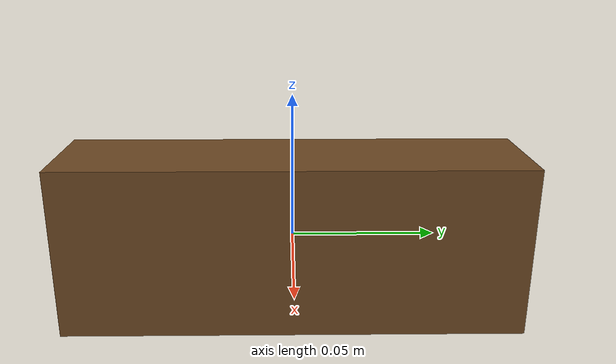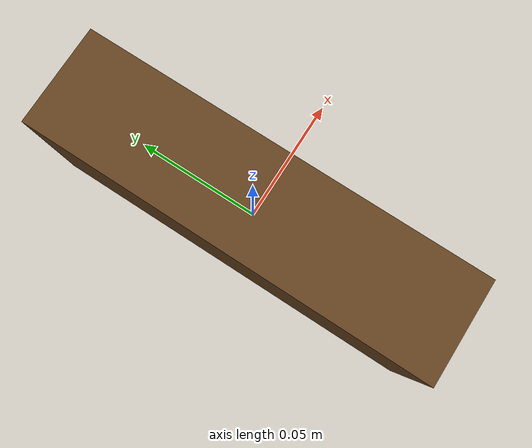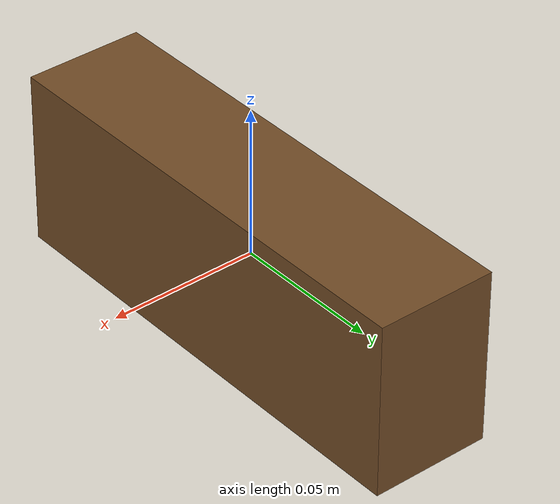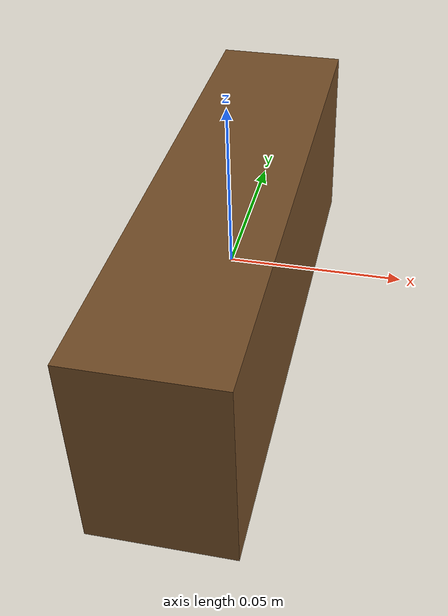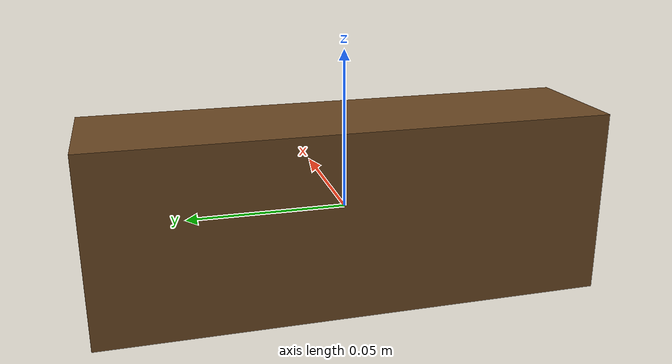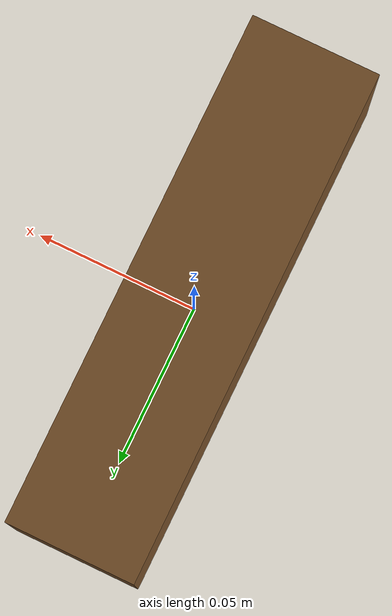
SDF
<?xml version="1.0"?>
<sdf version="1.6">
  <model name="pick_table">
    <static>true</static>
    <link name="link">
      <collision name="collision"><geometry><box><size>0.04 0.16 0.059</size></box></geometry></collision>
      <visual name="visual">
        <geometry><box><size>0.04 0.16 0.059</size></box></geometry>
        <material><ambient>0.45 0.3 0.15 1</ambient><diffuse>0.45 0.3 0.15 1</diffuse></material>
      </visual>
    </link>
  </model>
</sdf>
